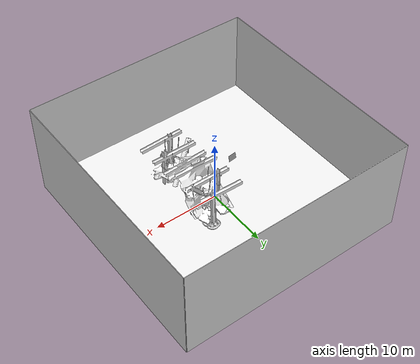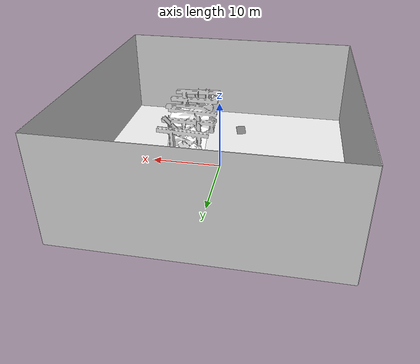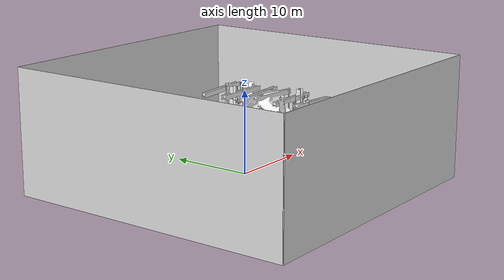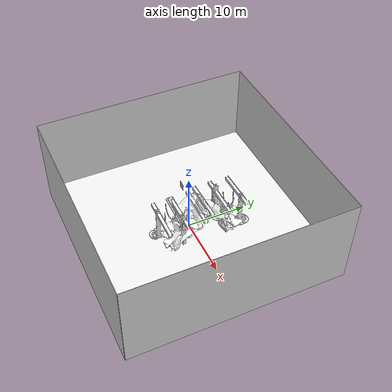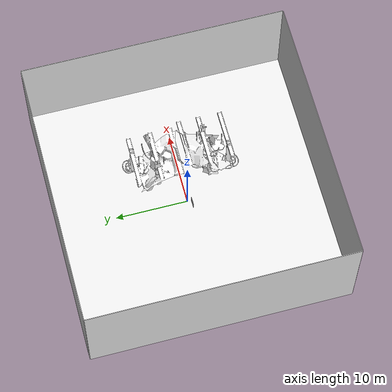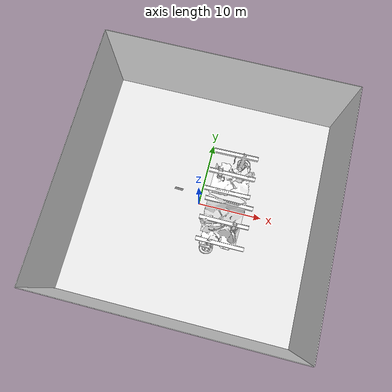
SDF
<sdf version="1.6">
 <world name="challenge">
  <scene><ambient>.4 .4 .4</ambient></scene>
  <include><pose>-3.1 -0.46 5.7 0 0.16 0</pose><uri>model://nist_maze_wall_120a</uri></include>
  <include><pose>4 0.05 3.76 0 0 0</pose><uri>model://walldebrisdouble</uri></include>
  <include><name>Boundary</name><pose>-18 -18 0 0 0 0</pose><uri>model://basement_tank</uri></include>
 </world>
</sdf>

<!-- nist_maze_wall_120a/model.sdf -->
<sdf version="1.5">
  <model name="nist_maze_wall_120a">
    <static>true</static>
    <link name="nist_maze_wall_120_link">
      <pose>0 0 0.0 0 0 0</pose>
      <collision name="collision">
        <geometry>
          <mesh>
            <uri>model://nist_maze_wall_120/meshes/nist_maze_wall_120.dae</uri>
            <scale>1 1 1</scale>
          </mesh>
        </geometry>
      </collision>
      <visual name="visual">
        <geometry>
          <mesh>
            <uri>model://nist_maze_wall_120/meshes/nist_maze_wall_120.dae</uri>
            <scale>1 1 1</scale>
          </mesh>
        </geometry>
      </visual>
    </link>
  </model>
</sdf>

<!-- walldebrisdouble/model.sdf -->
<sdf version="1.6">
  <model name="walldebrisdouble">
    <static>true</static>
    <link name="base_link">
      <pose>0 3.5 0 0 0 0</pose>
      <collision name="collision">
        <pose>0 0 0 0 0 0</pose>
        <geometry>
          <mesh>
            <uri>meshes/walldebrisdouble.dae</uri>
            <scale>1.0 1.0 1.0</scale>
          </mesh>
        </geometry>
      </collision>
      <visual name= "ConcreteRubble_visual">
        <geometry>
          <mesh>
            <uri>meshes/walldebrisdouble.dae</uri>
            <submesh>
              <name>ConcreteRubble</name>
              <center>false</center>
            </submesh>
          </mesh>
        </geometry>
        <material>
          <diffuse>1.0 1.0 1.0</diffuse>
          <specular>1.0 1.0 1.0</specular>
          <pbr>
            <metal>
              <albedo_map>materials/textures/ConcreteRubble_Albedo.jpg</albedo_map>
              <normal_map>materials/textures/ConcreteRubble_Normal.jpg</normal_map>
              <roughness_map>materials/textures/ConcreteRubble_Roughness.jpg</roughness_map>
            </metal>
          </pbr>
        </material>
      </visual>
      <visual name= "Rubble_visual">
        <geometry>
          <mesh>
            <uri>meshes/walldebrisdouble.dae</uri>
            <submesh>
              <name>Rubble</name>
              <center>false</center>
            </submesh>
          </mesh>
        </geometry>
        <material>
          <diffuse>1.0 1.0 1.0</diffuse>
          <specular>1.0 1.0 1.0</specular>
          <pbr>
            <metal>
              <albedo_map>materials/textures/Rubble_Albedo.jpg</albedo_map>
              <normal_map>materials/textures/Rubble_Normal.jpg</normal_map>
              <roughness_map>materials/textures/Rubble_Roughness.jpg</roughness_map>
            </metal>
          </pbr>
        </material>
      </visual>
      <visual name= "ColumnH_visual">
        <geometry>
          <mesh>
            <uri>meshes/walldebrisdouble.dae</uri>
            <submesh>
              <name>ColumnH</name>
              <center>false</center>
            </submesh>
          </mesh>
        </geometry>
        <material>
          <diffuse>1.0 1.0 1.0</diffuse>
          <specular>1.0 1.0 1.0</specular>
          <pbr>
            <metal>
              <albedo_map>materials/textures/ColumnH_Albedo.jpg</albedo_map>
              <normal_map>materials/textures/ColumnH_Normal.jpg</normal_map>
              <metalness_map>materials/textures/ColumnH_Metalness.jpg</metalness_map>
              <roughness_map>materials/textures/ColumnH_Roughness.jpg</roughness_map>
            </metal>
          </pbr>
        </material>
      </visual>
      <visual name= "Cable_visual">
        <geometry>
          <mesh>
            <uri>meshes/walldebrisdouble.dae</uri>
            <submesh>
              <name>Cable</name>
              <center>false</center>
            </submesh>
          </mesh>
        </geometry>
        <material>
          <diffuse>1.0 1.0 1.0</diffuse>
          <specular>1.0 1.0 1.0</specular>
          <pbr>
            <metal>
              <albedo_map>materials/textures/Cable_Albedo.jpg</albedo_map>
              <roughness_map>materials/textures/Cable_Roughness.jpg</roughness_map>
            </metal>
          </pbr>
        </material>
      </visual>
    </link>
  </model>
</sdf>

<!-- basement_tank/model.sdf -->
<sdf version='1.6'>
  <model name='basement_tank_model'>
    <static>true</static>
    <link name='basement_tank'>
      <inertial>
        <mass>1</mass>
      </inertial>

      <collision name='bottom'>
        <laser_retro>50</laser_retro>
        <pose frame=''>18 18 0.02 0 -0 0</pose>
        <geometry>
          <box>
            <size>36 36 0.04</size>
          </box>
        </geometry>
      </collision>
      <visual name='visual1'>
        <laser_retro>50</laser_retro>
        <pose frame=''>18 18 0.02 0 -0 0</pose>
        <geometry>
          <box>
            <size>36 36 0.04</size>
          </box>
        </geometry>
        <material>
          <script>
            <uri>file://usr/share/gz/gz-sim8/media/gazebo.material</uri>
            <name>Gazebo/White</name>
          </script>
        </material>
      </visual>

      <collision name='left_side'>
        <laser_retro>50</laser_retro>
        <pose frame=''>-0.04 18 6 0 -0 0</pose>
        <geometry>
          <box>
            <size>0.08 36 15</size>
          </box>
        </geometry>
      </collision>
      <visual name='visual2'>
        <laser_retro>50</laser_retro>
        <pose frame=''>-0.04 18 6 0 -0 0</pose>
        <geometry>
          <box>
            <size>0.08 36 15</size>
          </box>
        </geometry>
        <material>
          <script>
            <uri>file://usr/share/gz/gz-sim8/media/gazebo.material</uri>
            <name>Gazebo/White</name>
          </script>
        </material>
      </visual>

      <collision name='right_side'>
        <laser_retro>50</laser_retro>
        <pose frame=''>36.04 18 6 0 -0 0</pose>
        <geometry>
          <box>
            <size>0.08 36 15</size>
          </box>
        </geometry>
      </collision>
      <visual name='visual3'>
        <laser_retro>50</laser_retro>
        <pose frame=''>36.04 18 6 0 -0 0</pose>
        <geometry>
          <box>
            <size>0.08 36 15</size>
          </box>
        </geometry>
        <material>
          <script>
            <uri>file://usr/share/gz/gz-sim8/media/gazebo.material</uri>
            <name>Gazebo/White</name>
          </script>
        </material>
      </visual>

      <collision name='front_side'>
        <laser_retro>50</laser_retro>
        <pose frame=''>18 -0.04 6 0 -0 0</pose>
        <geometry>
          <box>
            <size>36 0.08 15</size>
          </box>
        </geometry>
      </collision>
      <visual name='visual4'>
        <laser_retro>50</laser_retro>
        <pose frame=''>18 -0.04 6 0 -0 0</pose>
        <geometry>
          <box>
            <size>36 0.08 15</size>
          </box>
        </geometry>
        <material>
          <script>
            <uri>file://usr/share/gz/gz-sim8/media/gazebo.material</uri>
            <name>Gazebo/White</name>
          </script>
        </material>
      </visual>

      <collision name='back_side'>
        <laser_retro>50</laser_retro>
        <pose frame=''>18 36.04 6 0 -0 0</pose>
        <geometry>
          <box>
            <size>36 0.08 15</size>
          </box>
        </geometry>
      </collision>
      <visual name='visual5'>
        <laser_retro>50</laser_retro>
        <pose frame=''>18 36.04 6 0 -0 0</pose>
        <geometry>
          <box>
            <size>36 0.08 15</size>
          </box>
        </geometry>
        <material>
          <script>
            <uri>file://usr/share/gz/gz-sim8/media/gazebo.material</uri>
            <name>Gazebo/White</name>
          </script>
        </material>
      </visual>
    </link>
  </model>
</sdf>
